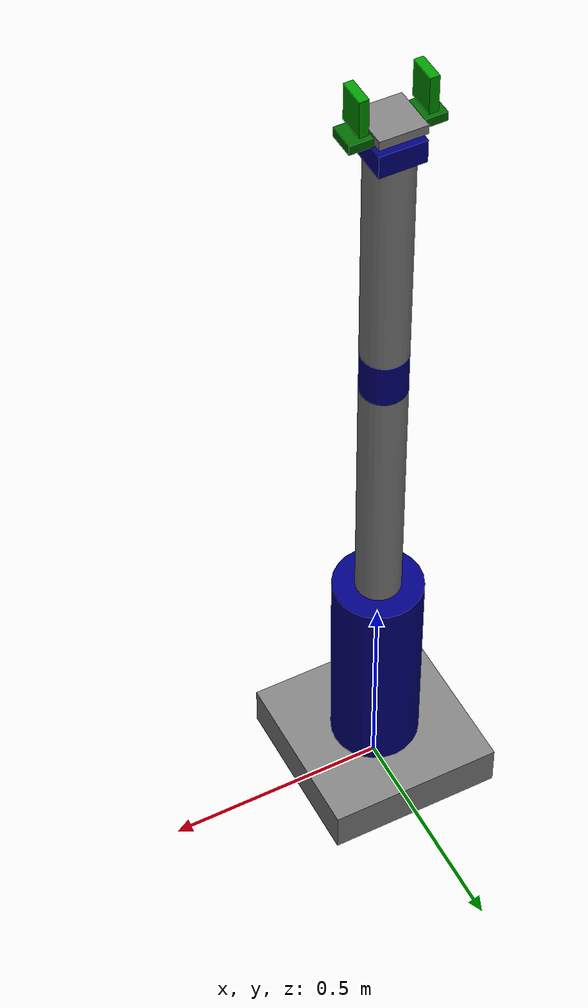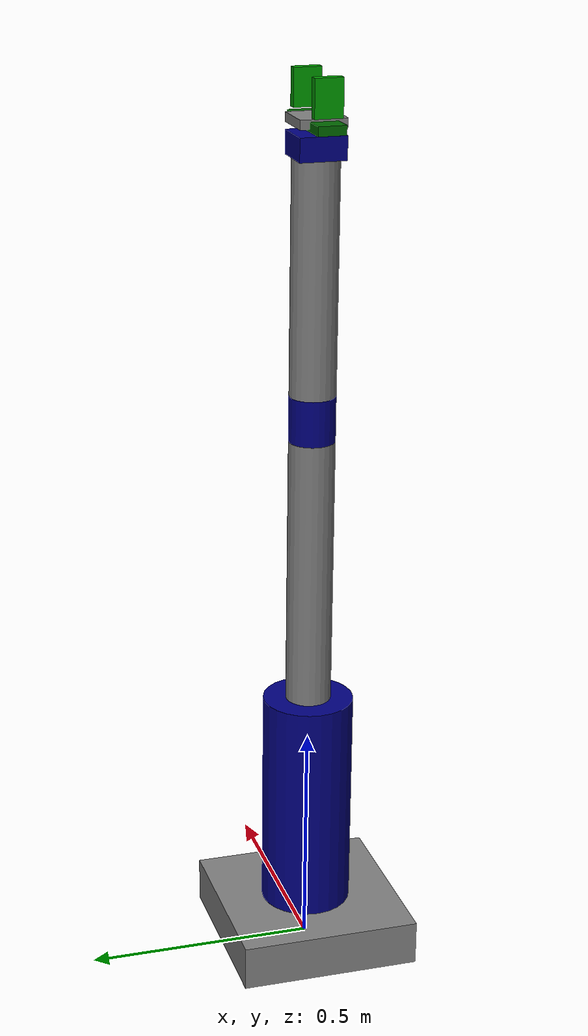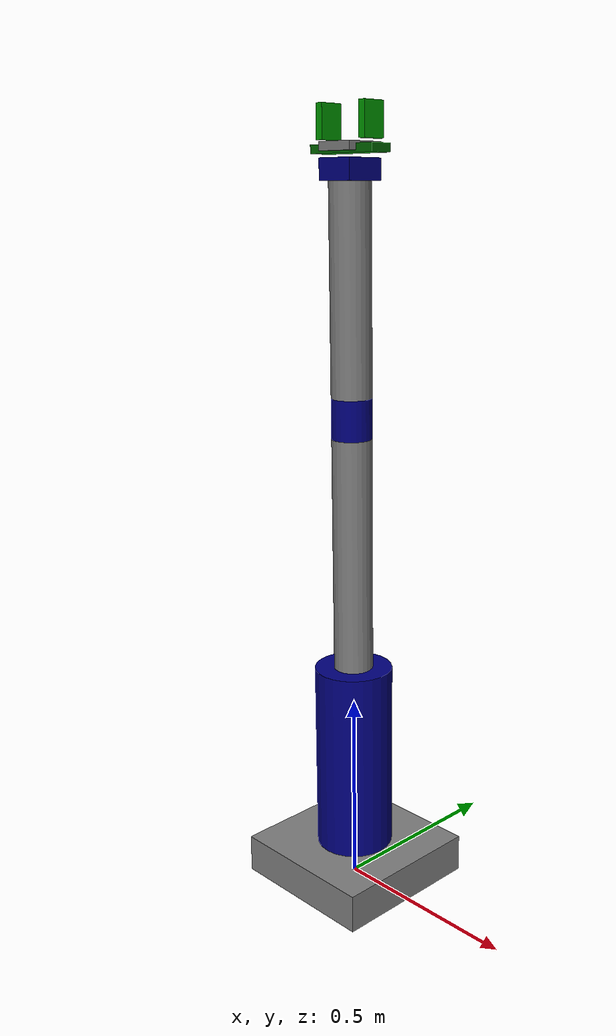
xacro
<?xml version="1.0"?>
<robot xmlns:xacro="http://www.ros.org/wiki/xacro" name="my_robot">
    <xacro:arg name="initial_positions_file" default="initial_positions.yaml" />

    <!-- Import my_robot urdf file -->
    <xacro:include filename="$(find robot_description)/urdf/robot.urdf.xacro" />

    <!-- Import control_xacro -->
    <xacro:include filename="my_robot.ros2_control.xacro" />

    <xacro:my_robot_ros2_control name="FakeSystem" initial_positions_file="$(arg initial_positions_file)"/>

</robot>

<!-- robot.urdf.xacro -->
<robot name="my_robot" xmlns:xacro="http://www.ros.org/wiki/xacro">

    <xacro:include filename="common_properties.xacro"/>
    <xacro:include filename="arm.xacro"/>
    <xacro:include filename="gripper.xacro"/>
    <xacro:include filename="my_robot.ros2_control.xacro"/>

    <joint name="gripper_base_joint" type="fixed">
        <parent link="tool_link"/>
        <child link="gripper_base_link"/>
        <origin xyz="0.0 0.0 0.0" rpy="0.0 0.0 0.0"/>
    </joint>

</robot>

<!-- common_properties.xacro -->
<robot xmlns:xacro="http://www.ros.org/wiki/xacro">
    <material name="grey">
        <color rgba="0.5 0.5 0.5 1"/>
    </material>
    <material name="blue">
        <color rgba="0 0 0.5 1"/>
    </material>
        <material name="dark_green">
        <color rgba="0 0.4 0 1.0"/>
    </material>

    <material name="light_green">
        <color rgba="0 0.6 0 1.0"/>
    </material>

</robot>

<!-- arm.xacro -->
<robot xmlns:xacro="http://www.ros.org/wiki/xacro">

	<link name="base_link">
      <visual>
        <geometry>
            <box size="0.4 0.4 0.1"/>
        </geometry>
        <origin xyz="0.0 0.0 0.05" rpy="0.0 0.0 0.0"/>
        <material name="grey" />
      </visual>
      <collision>
        <geometry>
          <box size="0.4 0.4 0.1"/>
        </geometry>
        <origin xyz="0.0 0.0 0.05" rpy="0.0 0.0 0.0"/>
      </collision>
    </link>

    <link name="shoulder_link">
      <visual>
        <geometry>
            <cylinder length="0.5" radius="0.1"/>
        </geometry>
        <origin xyz="0.0 0.0 0.25" rpy="0.0 0.0 0.0"/>
        <material name="blue" />
      </visual>
      <collision>
        <geometry>
          <box size="0.2 0.2 0.5"/>
        </geometry>
        <origin xyz="0.0 0.0 0.25" rpy="0.0 0.0 0.0"/>
      </collision>
    </link>

    <link name="arm_link">
      <visual>
        <geometry>
            <cylinder length="0.6" radius="0.05"/>
        </geometry>
        <origin xyz="0.0 0.0 0.3" rpy="0.0 0.0 0.0"/>
        <material name="grey" />
      </visual>
      <collision>
        <geometry>
          <box size="0.1 0.1 0.6"/>
        </geometry>
        <origin xyz="0.0 0.0 0.3" rpy="0.0 0.0 0.0"/>
      </collision>
    </link>

    <link name="elbow_link">
      <visual>
        <geometry>
            <cylinder length="0.1" radius="0.05"/>
        </geometry>
        <origin xyz="0.0 0.0 0.05" rpy="0.0 0.0 0.0"/>
        <material name="blue" />
      </visual>
      <collision>
        <geometry>
          <box size="0.1 0.1 0.1"/>
        </geometry>
        <origin xyz="0.0 0.0 0.05" rpy="0.0 0.0 0.0"/>
      </collision>
    </link>

    <link name="forearm_link">
      <visual>
        <geometry>
            <cylinder length="0.5" radius="0.05"/>
        </geometry>
        <origin xyz="0.0 0.0 0.25" rpy="0.0 0.0 0.0"/>
        <material name="grey" />
      </visual>
      <collision>
        <geometry>
          <box size="0.1 0.1 0.5"/>
        </geometry>
        <origin xyz="0.0 0.0 0.25" rpy="0.0 0.0 0.0"/>
      </collision>
    </link>

	<link name="wrist_link">
      <visual>
        <geometry>
            <box size="0.1 0.1 0.05"/>
        </geometry>
        <origin xyz="0.0 0.0 0.025" rpy="0.0 0.0 0.0"/>
        <material name="blue" />
      </visual>
      <collision>
        <geometry>
          <box size="0.1 0.1 0.05"/>
        </geometry>
        <origin xyz="0.0 0.0 0.025" rpy="0.0 0.0 0.0"/>
      </collision>
    </link>

	<link name="hand_link">
      <visual>
        <geometry>
            <box size="0.1 0.1 0.02"/>
        </geometry>
        <origin xyz="0.0 0.0 0.025" rpy="0.0 0.0 0.0"/>
        <material name="grey" />
      </visual>
      <collision>
        <geometry>
          <box size="0.1 0.1 0.02"/>
        </geometry>
        <origin xyz="0.0 0.0 0.025" rpy="0.0 0.0 0.0"/>
      </collision>
    </link>

	<link name="tool_link"/>

    <joint name="joint1" type="revolute">
        <parent link="base_link"/>
        <child link="shoulder_link"/>
        <origin xyz="0.0 0.0 0.1" rpy="0.0 0.0 0.0"/>
        <axis xyz="0.0 0.0 1.0"/>
        <limit effort="1000.0" velocity="1.0" lower="-3.14" upper="3.14"/>
    </joint>

    <joint name="joint2" type="revolute">
        <parent link="shoulder_link"/>
        <child link="arm_link"/>
        <origin xyz="0.0 0.0 0.5" rpy="0.0 0.0 0.0"/>
        <axis xyz="0 1 0"/>
        <limit effort="1000.0" velocity="1.0" lower="0" upper="2.5"/>
    </joint>

    <joint name="joint3" type="revolute">
        <parent link="arm_link"/>
        <child link="elbow_link"/>
        <origin xyz="0.0 0.0 0.6" rpy="0.0 0.0 0.0"/>
        <axis xyz="0 1 0"/>
        <limit effort="500.0" velocity="1.0" lower="0" upper="2.5"/>
    </joint>

    <joint name="joint4" type="revolute">
        <parent link="elbow_link"/>
        <child link="forearm_link"/>
        <origin xyz="0.0 0.0 0.1" rpy="0.0 0.0 0.0"/>
        <axis xyz="0 0 1"/>
        <limit effort="500.0" velocity="1.0" lower="-3.14" upper="3.14"/>
    </joint>

    <joint name="joint5" type="revolute">
        <parent link="forearm_link"/>
        <child link="wrist_link"/>
        <origin xyz="0.0 0.0 0.5" rpy="0.0 0.0 0.0"/>
        <axis xyz="0 1 0"/>
        <limit effort="300.0" velocity="1.0" lower="-1.57" upper="1.57"/>
    </joint>

    <joint name="joint6" type="continuous">
        <parent link="wrist_link"/>
        <child link="hand_link"/>
        <origin xyz="0.0 0.0 0.05" rpy="0.0 0.0 0.0"/>
        <axis xyz="0 0 1"/>
    </joint>

    <joint name="hand_tool_joint" type="fixed">
        <parent link="hand_link"/>
        <child link="tool_link"/>
        <origin xyz="0.0 0.0 0.02" rpy="0.0 0.0 0.0"/>
    </joint>

</robot>

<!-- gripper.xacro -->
<robot  xmlns:xacro="http://www.ros.org/wiki/xacro">
    <link name="gripper_base_link">
        <visual>
            <geometry>
                <box size="0.2 0.06 0.02"/>
            </geometry>
            <origin rpy="0 0 0.01" xyz="0 0 0"/>
            <material name="dark_green"/>
        </visual>
        <collision>
            <geometry>
                <box size="0.2 0.06 0.02"/>
            </geometry>
            <origin rpy="0 0 0.01" xyz="0 0 0"/>
        </collision>
    </link>
    <link name="gripper_left_finger_link">
        <visual>
            <geometry>
                <box size="0.02 0.06 0.08"/>
            </geometry>
            <origin rpy="0 0 0.0" xyz="0 0 0.04"/>
            <material name="light_green"/>
        </visual>
        <collision>
            <geometry>
                <box size="0.02 0.06 0.08"/>
            </geometry>
            <origin rpy="0 0 0.0" xyz="0 0 0.04"/>
        </collision>
    </link>

    <link name="gripper_right_finger_link">
        <visual>
            <geometry>
                <box size="0.02 0.06 0.08"/>
            </geometry>
            <origin rpy="0 0 0.0" xyz="0 0 0.04"/>
            <material name="light_green"/>
        </visual>
        <collision>
            <geometry>
                <box size="0.02 0.06 0.08"/>
            </geometry>
            <origin rpy="0 0 0.0" xyz="0 0 0.04"/>
        </collision>
    </link>

    <joint name="gripper_left_finger_joint" type="prismatic">
        <parent link="gripper_base_link"/>
        <child link="gripper_left_finger_link"/>
        <origin xyz="-0.07 0.0 0.02" rpy="0.0 0.0 0.0"/>
        <axis xyz="1 0 0"/>
        <limit lower="0.0" upper="0.06" effort="1000" velocity="0.0"/>
    </joint>

    <joint name="gripper_right_finger_joint" type="prismatic">
        <parent link="gripper_base_link"/>
        <child link="gripper_right_finger_link"/>
        <origin xyz="0.07 0.0 0.02" rpy="0.0 0.0 0.0"/>
        <axis xyz="1 0 0"/>
        <mimic joint="gripper_left_finger_joint" multiplier="-1"/>
        <limit lower="-0.06" upper="0" effort="1000" velocity="0.0"/>
    </joint>
</robot>
